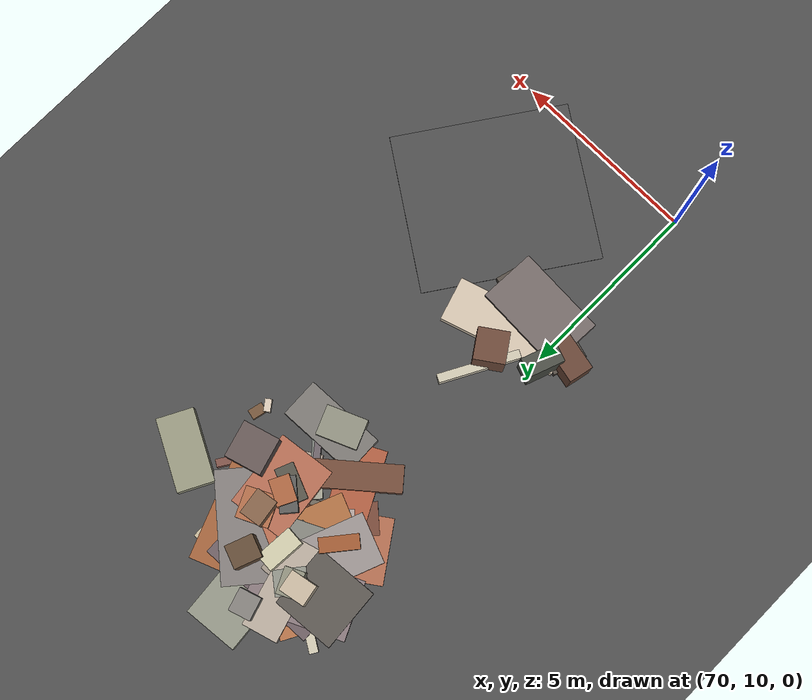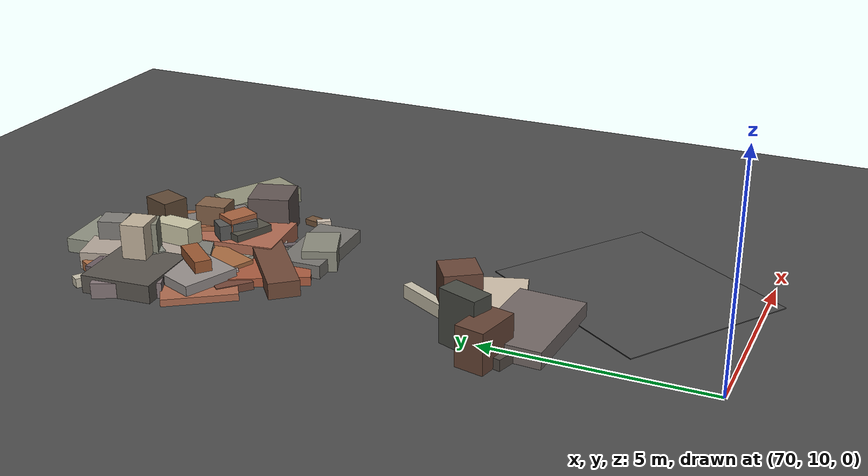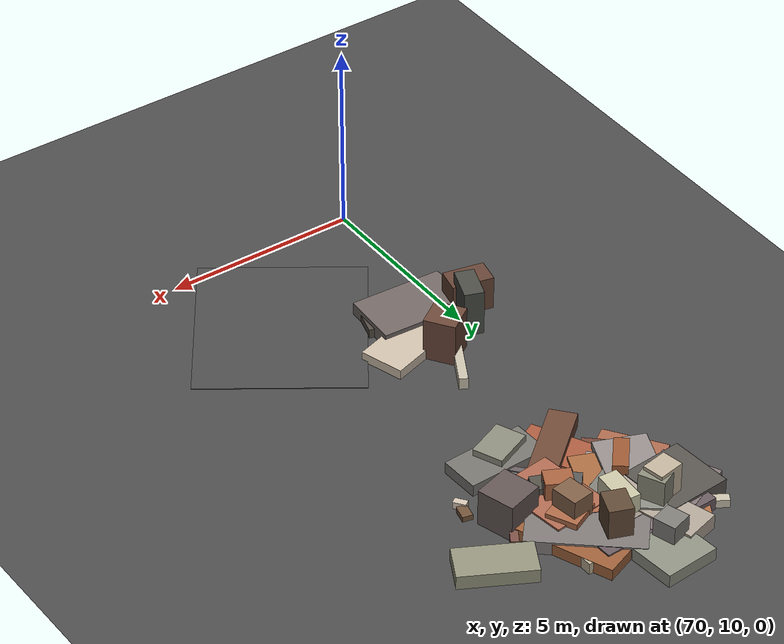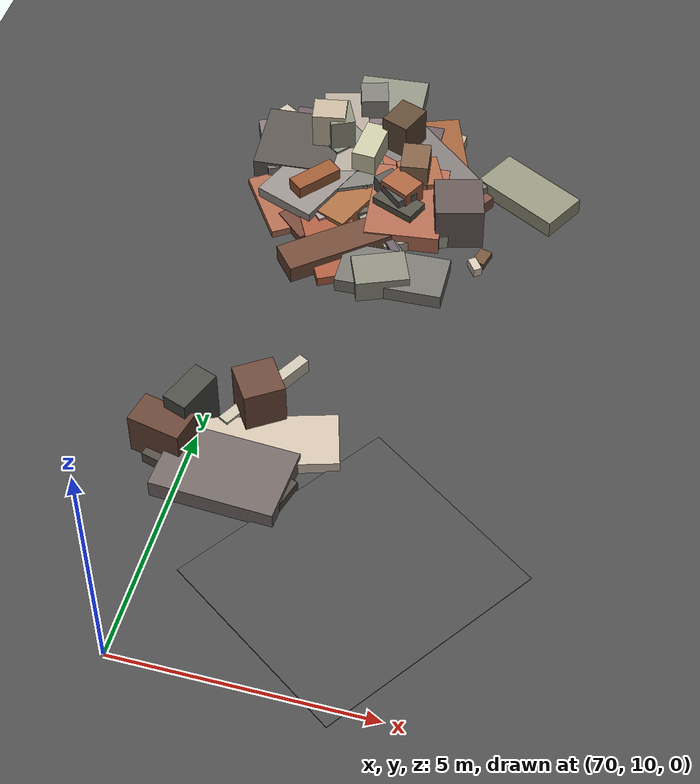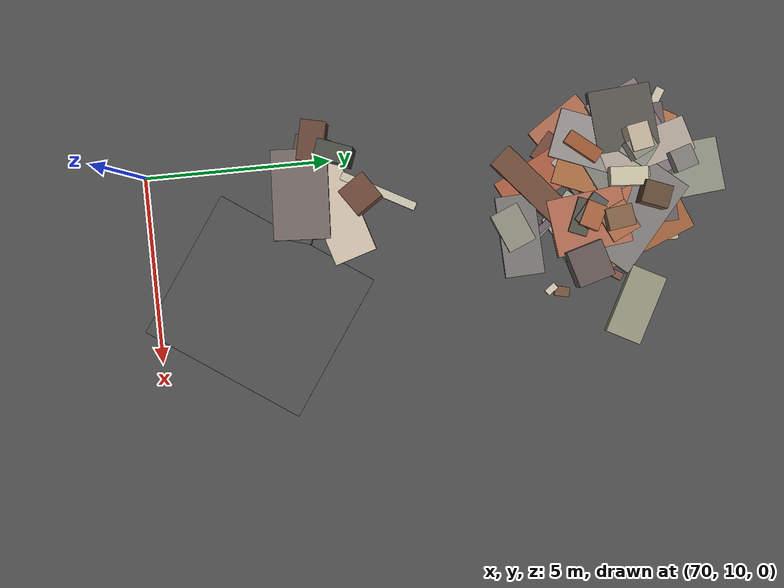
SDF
<sdf version="1.6">
 <world name="navitas_arena">
  <model name="ground_plane">
   <static>true</static>
   <link name="link">
    <collision name="collision">
     <geometry><plane><normal>0 0 1</normal><size>400 400</size></plane></geometry>
     <surface><friction><ode><mu>0.800</mu><mu2>0.800</mu2></ode></friction></surface>
    </collision>
    <visual name="visual">
     <cast_shadows>false</cast_shadows>
     <geometry><plane><normal>0 0 1</normal><size>400 400</size></plane></geometry>
     <material>
      <specular>0.04 0.04 0.04 1</specular>
      <script>
       <uri>file://media/materials/scripts/navitas_asphalt.material</uri>
       <name>Navitas/RealArenaAsphalt</name>
      </script>
     </material>
    </visual>
   </link>
  </model>
  <model name="road_zor_1_17">
   <static>true</static>
   <pose>73.715 12.753 0.040 0 0 0.971</pose>
   <link name="link">
    <collision name="col"><geometry><box><size>4.708 4.200 0.020</size></box></geometry></collision>
    <visual name="vis">
     <geometry><box><size>4.708 4.200 0.020</size></box></geometry>
     <material>
      <specular>0.04 0.04 0.04 1</specular>
      <script>
       <uri>file://media/materials/scripts/navitas_asphalt.material</uri>
       <name>Navitas/RealArenaAsphalt</name>
      </script>
     </material>
    </visual>
   </link>
  </model>
  <model name="deb_zor_42">
   <static>true</static>
   <pose>74.243 21.717 0.000 0 0 0</pose>
   <link name="link">
    <collision name="col_0">
     <pose>0.392 1.080 0.183 0.000 0.000 2.658</pose>
     <geometry><box><size>1.907 0.968 0.366</size></box></geometry>
    </collision>
    <visual name="vis_0">
     <pose>0.392 1.080 0.183 0.000 0.000 2.658</pose>
     <geometry><box><size>1.907 0.968 0.366</size></box></geometry>
     <material>
      <ambient>0.54 0.53 0.46 1</ambient>
      <diffuse>0.58 0.58 0.49 1</diffuse>
      <specular>0.05 0.05 0.045 1</specular>
     </material>
    </visual>
    <collision name="col_1">
     <pose>-0.143 -0.838 0.072 0.000 0.000 1.342</pose>
     <geometry><box><size>0.388 0.261 0.143</size></box></geometry>
    </collision>
    <visual name="vis_1">
     <pose>-0.143 -0.838 0.072 0.000 0.000 1.342</pose>
     <geometry><box><size>0.388 0.261 0.143</size></box></geometry>
     <material>
      <ambient>0.42 0.30 0.21 1</ambient>
      <diffuse>0.45 0.33 0.23 1</diffuse>
      <specular>0.05 0.05 0.045 1</specular>
     </material>
    </visual>
    <collision name="col_2">
     <pose>-0.508 0.563 0.139 0.000 0.000 1.005</pose>
     <geometry><box><size>0.519 0.198 0.278</size></box></geometry>
    </collision>
    <visual name="vis_2">
     <pose>-0.508 0.563 0.139 0.000 0.000 1.005</pose>
     <geometry><box><size>0.519 0.198 0.278</size></box></geometry>
     <material>
      <ambient>0.46 0.30 0.25 1</ambient>
      <diffuse>0.49 0.32 0.28 1</diffuse>
      <specular>0.05 0.05 0.045 1</specular>
     </material>
    </visual>
    <collision name="col_3">
     <pose>-0.230 -1.119 0.094 0.000 0.000 2.212</pose>
     <geometry><box><size>0.327 0.174 0.189</size></box></geometry>
    </collision>
    <visual name="vis_3">
     <pose>-0.230 -1.119 0.094 0.000 0.000 2.212</pose>
     <geometry><box><size>0.327 0.174 0.189</size></box></geometry>
     <material>
      <ambient>0.77 0.71 0.65 1</ambient>
      <diffuse>0.83 0.77 0.70 1</diffuse>
      <specular>0.05 0.05 0.045 1</specular>
     </material>
    </visual>
   </link>
  </model>
  <model name="deb_zor_55">
   <static>true</static>
   <pose>72.549 22.589 0.000 0 0 0</pose>
   <link name="link">
    <collision name="col_0">
     <pose>-0.014 0.448 0.152 0.000 0.000 1.949</pose>
     <geometry><box><size>2.685 1.407 0.305</size></box></geometry>
    </collision>
    <visual name="vis_0">
     <pose>-0.014 0.448 0.152 0.000 0.000 1.949</pose>
     <geometry><box><size>2.685 1.407 0.305</size></box></geometry>
     <material>
      <ambient>0.57 0.35 0.21 1</ambient>
      <diffuse>0.62 0.38 0.23 1</diffuse>
      <specular>0.05 0.05 0.045 1</specular>
     </material>
    </visual>
    <collision name="col_1">
     <pose>0.117 0.368 0.120 0.000 0.000 3.151</pose>
     <geometry><box><size>0.369 0.276 0.241</size></box></geometry>
    </collision>
    <visual name="vis_1">
     <pose>0.117 0.368 0.120 0.000 0.000 3.151</pose>
     <geometry><box><size>0.369 0.276 0.241</size></box></geometry>
     <material>
      <ambient>0.31 0.30 0.28 1</ambient>
      <diffuse>0.33 0.32 0.30 1</diffuse>
      <specular>0.05 0.05 0.045 1</specular>
     </material>
    </visual>
    <collision name="col_2">
     <pose>-0.425 0.297 0.178 0.000 0.000 2.435</pose>
     <geometry><box><size>2.831 1.796 0.356</size></box></geometry>
    </collision>
    <visual name="vis_2">
     <pose>-0.425 0.297 0.178 0.000 0.000 2.435</pose>
     <geometry><box><size>2.831 1.796 0.356</size></box></geometry>
     <material>
      <ambient>0.47 0.45 0.44 1</ambient>
      <diffuse>0.50 0.48 0.47 1</diffuse>
      <specular>0.05 0.05 0.045 1</specular>
     </material>
    </visual>
    <collision name="col_3">
     <pose>0.437 -0.277 0.123 0.000 0.000 3.464</pose>
     <geometry><box><size>0.401 0.219 0.245</size></box></geometry>
    </collision>
    <visual name="vis_3">
     <pose>0.437 -0.277 0.123 0.000 0.000 3.464</pose>
     <geometry><box><size>0.401 0.219 0.245</size></box></geometry>
     <material>
      <ambient>0.37 0.32 0.30 1</ambient>
      <diffuse>0.40 0.35 0.33 1</diffuse>
      <specular>0.05 0.05 0.045 1</specular>
     </material>
    </visual>
   </link>
  </model>
  <model name="deb_zor_68">
   <static>true</static>
   <pose>70.370 15.007 0.000 0 0 0</pose>
   <link name="link">
    <collision name="col_0">
     <pose>0.501 -0.228 0.121 0.000 0.000 0.273</pose>
     <geometry><box><size>1.749 1.144 0.243</size></box></geometry>
    </collision>
    <visual name="vis_0">
     <pose>0.501 -0.228 0.121 0.000 0.000 0.273</pose>
     <geometry><box><size>1.749 1.144 0.243</size></box></geometry>
     <material>
      <ambient>0.48 0.46 0.42 1</ambient>
      <diffuse>0.51 0.49 0.45 1</diffuse>
      <specular>0.05 0.05 0.045 1</specular>
     </material>
    </visual>
    <collision name="col_1">
     <pose>-0.871 -0.390 0.456 0.000 0.000 -0.212</pose>
     <geometry><box><size>1.079 0.659 0.913</size></box></geometry>
    </collision>
    <visual name="vis_1">
     <pose>-0.871 -0.390 0.456 0.000 0.000 -0.212</pose>
     <geometry><box><size>1.079 0.659 0.913</size></box></geometry>
     <material>
      <ambient>0.37 0.25 0.19 1</ambient>
      <diffuse>0.40 0.27 0.21 1</diffuse>
      <specular>0.05 0.05 0.045 1</specular>
     </material>
    </visual>
    <collision name="col_2">
     <pose>0.336 -0.765 0.125 0.000 0.000 -0.276</pose>
     <geometry><box><size>2.839 0.938 0.249</size></box></geometry>
    </collision>
    <visual name="vis_2">
     <pose>0.336 -0.765 0.125 0.000 0.000 -0.276</pose>
     <geometry><box><size>2.839 0.938 0.249</size></box></geometry>
     <material>
      <ambient>0.31 0.27 0.25 1</ambient>
      <diffuse>0.33 0.30 0.27 1</diffuse>
      <specular>0.05 0.05 0.045 1</specular>
     </material>
    </visual>
    <collision name="col_3">
     <pose>0.471 -0.848 0.189 0.000 0.000 -0.052</pose>
     <geometry><box><size>2.425 1.511 0.377</size></box></geometry>
    </collision>
    <visual name="vis_3">
     <pose>0.471 -0.848 0.189 0.000 0.000 -0.052</pose>
     <geometry><box><size>2.425 1.511 0.377</size></box></geometry>
     <material>
      <ambient>0.41 0.38 0.37 1</ambient>
      <diffuse>0.45 0.41 0.40 1</diffuse>
      <specular>0.05 0.05 0.045 1</specular>
     </material>
    </visual>
    <collision name="col_4">
     <pose>0.807 0.008 0.130 0.000 0.000 0.301</pose>
     <geometry><box><size>3.093 1.168 0.260</size></box></geometry>
    </collision>
    <visual name="vis_4">
     <pose>0.807 0.008 0.130 0.000 0.000 0.301</pose>
     <geometry><box><size>3.093 1.168 0.260</size></box></geometry>
     <material>
      <ambient>0.75 0.69 0.62 1</ambient>
      <diffuse>0.81 0.75 0.67 1</diffuse>
      <specular>0.05 0.05 0.045 1</specular>
     </material>
    </visual>
   </link>
  </model>
  <model name="deb_zor_93">
   <static>true</static>
   <pose>72.999 21.070 0.000 0 0 0</pose>
   <link name="link">
    <collision name="col_0">
     <pose>-0.428 -0.213 0.114 0.000 0.000 0.547</pose>
     <geometry><box><size>1.091 0.145 0.229</size></box></geometry>
    </collision>
    <visual name="vis_0">
     <pose>-0.428 -0.213 0.114 0.000 0.000 0.547</pose>
     <geometry><box><size>1.091 0.145 0.229</size></box></geometry>
     <material>
      <ambient>0.62 0.56 0.52 1</ambient>
      <diffuse>0.67 0.61 0.56 1</diffuse>
      <specular>0.05 0.05 0.045 1</specular>
     </material>
    </visual>
    <collision name="col_1">
     <pose>0.412 0.536 0.489 0.000 0.000 0.283</pose>
     <geometry><box><size>0.981 0.979 0.979</size></box></geometry>
    </collision>
    <visual name="vis_1">
     <pose>0.412 0.536 0.489 0.000 0.000 0.283</pose>
     <geometry><box><size>0.981 0.979 0.979</size></box></geometry>
     <material>
      <ambient>0.36 0.31 0.31 1</ambient>
      <diffuse>0.39 0.34 0.33 1</diffuse>
      <specular>0.05 0.05 0.045 1</specular>
     </material>
    </visual>
    <collision name="col_2">
     <pose>-0.297 -0.898 0.119 0.000 0.000 -0.819</pose>
     <geometry><box><size>1.448 0.224 0.238</size></box></geometry>
    </collision>
    <visual name="vis_2">
     <pose>-0.297 -0.898 0.119 0.000 0.000 -0.819</pose>
     <geometry><box><size>1.448 0.224 0.238</size></box></geometry>
     <material>
      <ambient>0.43 0.43 0.42 1</ambient>
      <diffuse>0.46 0.47 0.45 1</diffuse>
      <specular>0.05 0.05 0.045 1</specular>
     </material>
    </visual>
    <collision name="col_3">
     <pose>-0.604 0.685 0.081 0.000 0.000 1.288</pose>
     <geometry><box><size>0.420 0.316 0.161</size></box></geometry>
    </collision>
    <visual name="vis_3">
     <pose>-0.604 0.685 0.081 0.000 0.000 1.288</pose>
     <geometry><box><size>0.420 0.316 0.161</size></box></geometry>
     <material>
      <ambient>0.51 0.52 0.47 1</ambient>
      <diffuse>0.55 0.56 0.51 1</diffuse>
      <specular>0.05 0.05 0.045 1</specular>
     </material>
    </visual>
   </link>
  </model>
  <model name="deb_zor_104">
   <static>true</static>
   <pose>70.414 15.709 0.000 0 0 0</pose>
   <link name="link">
    <collision name="col_0">
     <pose>0.600 0.075 0.574 0.000 0.000 -0.972</pose>
     <geometry><box><size>0.821 0.807 1.148</size></box></geometry>
    </collision>
    <visual name="vis_0">
     <pose>0.600 0.075 0.574 0.000 0.000 -0.972</pose>
     <geometry><box><size>0.821 0.807 1.148</size></box></geometry>
     <material>
      <ambient>0.39 0.26 0.21 1</ambient>
      <diffuse>0.42 0.28 0.22 1</diffuse>
      <specular>0.05 0.05 0.045 1</specular>
     </material>
    </visual>
    <collision name="col_1">
     <pose>-0.533 -0.520 0.616 0.000 0.000 1.215</pose>
     <geometry><box><size>0.948 0.503 1.233</size></box></geometry>
    </collision>
    <visual name="vis_1">
     <pose>-0.533 -0.520 0.616 0.000 0.000 1.215</pose>
     <geometry><box><size>0.948 0.503 1.233</size></box></geometry>
     <material>
      <ambient>0.27 0.28 0.25 1</ambient>
      <diffuse>0.29 0.30 0.27 1</diffuse>
      <specular>0.05 0.05 0.045 1</specular>
     </material>
    </visual>
    <collision name="col_2">
     <pose>0.780 0.123 0.160 0.000 0.000 -0.574</pose>
     <geometry><box><size>0.294 0.209 0.320</size></box></geometry>
    </collision>
    <visual name="vis_2">
     <pose>0.780 0.123 0.160 0.000 0.000 -0.574</pose>
     <geometry><box><size>0.294 0.209 0.320</size></box></geometry>
     <material>
      <ambient>0.30 0.33 0.31 1</ambient>
      <diffuse>0.33 0.36 0.33 1</diffuse>
      <specular>0.05 0.05 0.045 1</specular>
     </material>
    </visual>
    <collision name="col_3">
     <pose>0.537 0.525 0.157 0.000 0.000 1.074</pose>
     <geometry><box><size>2.151 0.225 0.313</size></box></geometry>
    </collision>
    <visual name="vis_3">
     <pose>0.537 0.525 0.157 0.000 0.000 1.074</pose>
     <geometry><box><size>2.151 0.225 0.313</size></box></geometry>
     <material>
      <ambient>0.73 0.70 0.63 1</ambient>
      <diffuse>0.79 0.76 0.68 1</diffuse>
      <specular>0.05 0.05 0.045 1</specular>
     </material>
    </visual>
    <collision name="col_4">
     <pose>0.534 -0.505 0.115 0.000 0.000 0.233</pose>
     <geometry><box><size>0.439 0.300 0.230</size></box></geometry>
    </collision>
    <visual name="vis_4">
     <pose>0.534 -0.505 0.115 0.000 0.000 0.233</pose>
     <geometry><box><size>0.439 0.300 0.230</size></box></geometry>
     <material>
      <ambient>0.29 0.26 0.23 1</ambient>
      <diffuse>0.32 0.28 0.25 1</diffuse>
      <specular>0.05 0.05 0.045 1</specular>
     </material>
    </visual>
   </link>
  </model>
  <model name="deb_zor_105">
   <static>true</static>
   <pose>72.313 22.029 0.000 0 0 0</pose>
   <link name="link">
    <collision name="col_0">
     <pose>-0.286 -0.234 0.377 0.000 0.000 0.861</pose>
     <geometry><box><size>0.457 0.896 0.754</size></box></geometry>
    </collision>
    <visual name="vis_0">
     <pose>-0.286 -0.234 0.377 0.000 0.000 0.861</pose>
     <geometry><box><size>0.457 0.896 0.754</size></box></geometry>
     <material>
      <ambient>0.32 0.33 0.32 1</ambient>
      <diffuse>0.35 0.35 0.34 1</diffuse>
      <specular>0.05 0.05 0.045 1</specular>
     </material>
    </visual>
    <collision name="col_1">
     <pose>-0.148 -0.469 0.287 0.000 0.000 -0.388</pose>
     <geometry><box><size>0.959 0.496 0.574</size></box></geometry>
    </collision>
    <visual name="vis_1">
     <pose>-0.148 -0.469 0.287 0.000 0.000 -0.388</pose>
     <geometry><box><size>0.959 0.496 0.574</size></box></geometry>
     <material>
      <ambient>0.31 0.30 0.26 1</ambient>
      <diffuse>0.33 0.32 0.28 1</diffuse>
      <specular>0.05 0.05 0.045 1</specular>
     </material>
    </visual>
    <collision name="col_2">
     <pose>0.051 0.497 0.261 0.000 0.000 0.444</pose>
     <geometry><box><size>0.853 0.813 0.522</size></box></geometry>
    </collision>
    <visual name="vis_2">
     <pose>0.051 0.497 0.261 0.000 0.000 0.444</pose>
     <geometry><box><size>0.853 0.813 0.522</size></box></geometry>
     <material>
      <ambient>0.63 0.38 0.26 1</ambient>
      <diffuse>0.68 0.42 0.28 1</diffuse>
      <specular>0.05 0.05 0.045 1</specular>
     </material>
    </visual>
    <collision name="col_3">
     <pose>-0.038 0.467 0.498 0.000 0.000 1.719</pose>
     <geometry><box><size>0.712 0.576 0.997</size></box></geometry>
    </collision>
    <visual name="vis_3">
     <pose>-0.038 0.467 0.498 0.000 0.000 1.719</pose>
     <geometry><box><size>0.712 0.576 0.997</size></box></geometry>
     <material>
      <ambient>0.48 0.35 0.26 1</ambient>
      <diffuse>0.51 0.38 0.28 1</diffuse>
      <specular>0.05 0.05 0.045 1</specular>
     </material>
    </visual>
    <collision name="col_4">
     <pose>-0.016 -0.268 0.202 0.000 0.000 1.698</pose>
     <geometry><box><size>2.025 1.538 0.404</size></box></geometry>
    </collision>
    <visual name="vis_4">
     <pose>-0.016 -0.268 0.202 0.000 0.000 1.698</pose>
     <geometry><box><size>2.025 1.538 0.404</size></box></geometry>
     <material>
      <ambient>0.64 0.39 0.30 1</ambient>
      <diffuse>0.69 0.42 0.32 1</diffuse>
      <specular>0.05 0.05 0.045 1</specular>
     </material>
    </visual>
    <collision name="col_5">
     <pose>0.340 0.282 0.160 0.000 0.000 2.025</pose>
     <geometry><box><size>2.821 0.880 0.319</size></box></geometry>
    </collision>
    <visual name="vis_5">
     <pose>0.340 0.282 0.160 0.000 0.000 2.025</pose>
     <geometry><box><size>2.821 0.880 0.319</size></box></geometry>
     <material>
      <ambient>0.57 0.57 0.51 1</ambient>
      <diffuse>0.61 0.62 0.55 1</diffuse>
      <specular>0.05 0.05 0.045 1</specular>
     </material>
    </visual>
   </link>
  </model>
  <model name="deb_zor_177">
   <static>true</static>
   <pose>71.505 23.707 0.000 0 0 0</pose>
   <link name="link">
    <collision name="col_0">
     <pose>-0.436 -1.014 0.157 0.000 0.000 1.092</pose>
     <geometry><box><size>1.224 0.133 0.314</size></box></geometry>
    </collision>
    <visual name="vis_0">
     <pose>-0.436 -1.014 0.157 0.000 0.000 1.092</pose>
     <geometry><box><size>1.224 0.133 0.314</size></box></geometry>
     <material>
      <ambient>0.67 0.43 0.29 1</ambient>
      <diffuse>0.72 0.46 0.31 1</diffuse>
      <specular>0.05 0.05 0.045 1</specular>
     </material>
    </visual>
    <collision name="col_1">
     <pose>-0.314 0.528 0.171 0.000 0.000 1.664</pose>
     <geometry><box><size>2.322 1.434 0.342</size></box></geometry>
    </collision>
    <visual name="vis_1">
     <pose>-0.314 0.528 0.171 0.000 0.000 1.664</pose>
     <geometry><box><size>2.322 1.434 0.342</size></box></geometry>
     <material>
      <ambient>0.52 0.53 0.47 1</ambient>
      <diffuse>0.56 0.57 0.51 1</diffuse>
      <specular>0.05 0.05 0.045 1</specular>
     </material>
    </visual>
    <collision name="col_2">
     <pose>-0.956 -0.546 0.149 0.000 0.000 1.238</pose>
     <geometry><box><size>1.375 0.297 0.299</size></box></geometry>
    </collision>
    <visual name="vis_2">
     <pose>-0.956 -0.546 0.149 0.000 0.000 1.238</pose>
     <geometry><box><size>1.375 0.297 0.299</size></box></geometry>
     <material>
      <ambient>0.40 0.27 0.17 1</ambient>
      <diffuse>0.44 0.30 0.19 1</diffuse>
      <specular>0.05 0.05 0.045 1</specular>
     </material>
    </visual>
    <collision name="col_3">
     <pose>-0.852 -0.113 0.107 0.000 0.000 1.828</pose>
     <geometry><box><size>0.235 0.343 0.213</size></box></geometry>
    </collision>
    <visual name="vis_3">
     <pose>-0.852 -0.113 0.107 0.000 0.000 1.828</pose>
     <geometry><box><size>0.235 0.343 0.213</size></box></geometry>
     <material>
      <ambient>0.55 0.54 0.47 1</ambient>
      <diffuse>0.60 0.58 0.50 1</diffuse>
      <specular>0.05 0.05 0.045 1</specular>
     </material>
    </visual>
    <collision name="col_4">
     <pose>-0.614 0.624 0.415 0.000 0.000 0.305</pose>
     <geometry><box><size>0.579 0.596 0.830</size></box></geometry>
    </collision>
    <visual name="vis_4">
     <pose>-0.614 0.624 0.415 0.000 0.000 0.305</pose>
     <geometry><box><size>0.579 0.596 0.830</size></box></geometry>
     <material>
      <ambient>0.47 0.46 0.44 1</ambient>
      <diffuse>0.50 0.49 0.47 1</diffuse>
      <specular>0.05 0.05 0.045 1</specular>
     </material>
    </visual>
   </link>
  </model>
  <model name="deb_zor_188">
   <static>true</static>
   <pose>71.303 21.404 0.000 0 0 0</pose>
   <link name="link">
    <collision name="col_0">
     <pose>-0.393 0.352 0.128 0.000 0.000 0.758</pose>
     <geometry><box><size>1.547 0.898 0.255</size></box></geometry>
    </collision>
    <visual name="vis_0">
     <pose>-0.393 0.352 0.128 0.000 0.000 0.758</pose>
     <geometry><box><size>1.547 0.898 0.255</size></box></geometry>
     <material>
      <ambient>0.63 0.57 0.56 1</ambient>
      <diffuse>0.68 0.62 0.60 1</diffuse>
      <specular>0.05 0.05 0.045 1</specular>
     </material>
    </visual>
    <collision name="col_1">
     <pose>0.395 -0.022 0.078 0.000 0.000 1.960</pose>
     <geometry><box><size>0.203 0.203 0.157</size></box></geometry>
    </collision>
    <visual name="vis_1">
     <pose>0.395 -0.022 0.078 0.000 0.000 1.960</pose>
     <geometry><box><size>0.203 0.203 0.157</size></box></geometry>
     <material>
      <ambient>0.51 0.47 0.47 1</ambient>
      <diffuse>0.55 0.51 0.51 1</diffuse>
      <specular>0.05 0.05 0.045 1</specular>
     </material>
    </visual>
    <collision name="col_2">
     <pose>0.357 -0.077 0.086 0.000 0.000 0.824</pose>
     <geometry><box><size>0.434 0.304 0.171</size></box></geometry>
    </collision>
    <visual name="vis_2">
     <pose>0.357 -0.077 0.086 0.000 0.000 0.824</pose>
     <geometry><box><size>0.434 0.304 0.171</size></box></geometry>
     <material>
      <ambient>0.58 0.57 0.52 1</ambient>
      <diffuse>0.63 0.62 0.56 1</diffuse>
      <specular>0.05 0.05 0.045 1</specular>
     </material>
    </visual>
    <collision name="col_3">
     <pose>0.570 0.076 0.149 0.000 0.000 0.791</pose>
     <geometry><box><size>0.246 0.347 0.298</size></box></geometry>
    </collision>
    <visual name="vis_3">
     <pose>0.570 0.076 0.149 0.000 0.000 0.791</pose>
     <geometry><box><size>0.246 0.347 0.298</size></box></geometry>
     <material>
      <ambient>0.57 0.31 0.20 1</ambient>
      <diffuse>0.62 0.33 0.21 1</diffuse>
      <specular>0.05 0.05 0.045 1</specular>
     </material>
    </visual>
   </link>
  </model>
  <model name="deb_zor_222">
   <static>true</static>
   <pose>70.737 22.952 0.000 0 0 0</pose>
   <link name="link">
    <collision name="col_0">
     <pose>0.775 0.152 0.131 0.000 0.000 0.735</pose>
     <geometry><box><size>2.069 1.268 0.263</size></box></geometry>
    </collision>
    <visual name="vis_0">
     <pose>0.775 0.152 0.131 0.000 0.000 0.735</pose>
     <geometry><box><size>2.069 1.268 0.263</size></box></geometry>
     <material>
      <ambient>0.55 0.33 0.20 1</ambient>
      <diffuse>0.59 0.36 0.21 1</diffuse>
      <specular>0.05 0.05 0.045 1</specular>
     </material>
    </visual>
    <collision name="col_1">
     <pose>-0.796 0.450 0.109 0.000 0.000 2.590</pose>
     <geometry><box><size>2.378 0.228 0.217</size></box></geometry>
    </collision>
    <visual name="vis_1">
     <pose>-0.796 0.450 0.109 0.000 0.000 2.590</pose>
     <geometry><box><size>2.378 0.228 0.217</size></box></geometry>
     <material>
      <ambient>0.73 0.70 0.63 1</ambient>
      <diffuse>0.79 0.76 0.68 1</diffuse>
      <specular>0.05 0.05 0.045 1</specular>
     </material>
    </visual>
    <collision name="col_2">
     <pose>-0.496 0.215 0.609 0.000 0.000 1.754</pose>
     <geometry><box><size>0.560 0.692 1.217</size></box></geometry>
    </collision>
    <visual name="vis_2">
     <pose>-0.496 0.215 0.609 0.000 0.000 1.754</pose>
     <geometry><box><size>0.560 0.692 1.217</size></box></geometry>
     <material>
      <ambient>0.71 0.65 0.57 1</ambient>
      <diffuse>0.76 0.70 0.61 1</diffuse>
      <specular>0.05 0.05 0.045 1</specular>
     </material>
    </visual>
    <collision name="col_3">
     <pose>0.064 -0.224 0.076 0.000 0.000 0.814</pose>
     <geometry><box><size>1.308 0.134 0.151</size></box></geometry>
    </collision>
    <visual name="vis_3">
     <pose>0.064 -0.224 0.076 0.000 0.000 0.814</pose>
     <geometry><box><size>1.308 0.134 0.151</size></box></geometry>
     <material>
      <ambient>0.60 0.59 0.51 1</ambient>
      <diffuse>0.64 0.63 0.56 1</diffuse>
      <specular>0.05 0.05 0.045 1</specular>
     </material>
    </visual>
    <collision name="col_4">
     <pose>-0.180 0.241 0.171 0.000 0.000 0.203</pose>
     <geometry><box><size>2.340 1.423 0.342</size></box></geometry>
    </collision>
    <visual name="vis_4">
     <pose>-0.180 0.241 0.171 0.000 0.000 0.203</pose>
     <geometry><box><size>2.340 1.423 0.342</size></box></geometry>
     <material>
      <ambient>0.59 0.31 0.21 1</ambient>
      <diffuse>0.64 0.33 0.23 1</diffuse>
      <specular>0.05 0.05 0.045 1</specular>
     </material>
    </visual>
   </link>
  </model>
  <model name="deb_zor_229">
   <static>true</static>
   <pose>71.561 23.238 0.000 0 0 0</pose>
   <link name="link">
    <collision name="col_0">
     <pose>-0.720 -0.236 0.177 0.000 0.000 0.537</pose>
     <geometry><box><size>1.112 0.301 0.353</size></box></geometry>
    </collision>
    <visual name="vis_0">
     <pose>-0.720 -0.236 0.177 0.000 0.000 0.537</pose>
     <geometry><box><size>1.112 0.301 0.353</size></box></geometry>
     <material>
      <ambient>0.52 0.51 0.48 1</ambient>
      <diffuse>0.56 0.55 0.52 1</diffuse>
      <specular>0.05 0.05 0.045 1</specular>
     </material>
    </visual>
    <collision name="col_1">
     <pose>0.315 0.780 0.116 0.000 0.000 -0.645</pose>
     <geometry><box><size>0.201 0.237 0.232</size></box></geometry>
    </collision>
    <visual name="vis_1">
     <pose>0.315 0.780 0.116 0.000 0.000 -0.645</pose>
     <geometry><box><size>0.201 0.237 0.232</size></box></geometry>
     <material>
      <ambient>0.41 0.36 0.34 1</ambient>
      <diffuse>0.44 0.39 0.36 1</diffuse>
      <specular>0.05 0.05 0.045 1</specular>
     </material>
    </visual>
    <collision name="col_2">
     <pose>0.533 -0.017 0.150 0.000 0.000 0.006</pose>
     <geometry><box><size>1.800 1.723 0.300</size></box></geometry>
    </collision>
    <visual name="vis_2">
     <pose>0.533 -0.017 0.150 0.000 0.000 0.006</pose>
     <geometry><box><size>1.800 1.723 0.300</size></box></geometry>
     <material>
      <ambient>0.70 0.65 0.55 1</ambient>
      <diffuse>0.75 0.70 0.59 1</diffuse>
      <specular>0.05 0.05 0.045 1</specular>
     </material>
    </visual>
    <collision name="col_3">
     <pose>0.160 0.370 0.152 0.000 0.000 1.667</pose>
     <geometry><box><size>1.396 0.177 0.304</size></box></geometry>
    </collision>
    <visual name="vis_3">
     <pose>0.160 0.370 0.152 0.000 0.000 1.667</pose>
     <geometry><box><size>1.396 0.177 0.304</size></box></geometry>
     <material>
      <ambient>0.43 0.43 0.42 1</ambient>
      <diffuse>0.47 0.47 0.45 1</diffuse>
      <specular>0.05 0.05 0.045 1</specular>
     </material>
    </visual>
    <collision name="col_4">
     <pose>0.209 0.238 0.574 0.000 0.000 -0.363</pose>
     <geometry><box><size>0.602 0.724 1.147</size></box></geometry>
    </collision>
    <visual name="vis_4">
     <pose>0.209 0.238 0.574 0.000 0.000 -0.363</pose>
     <geometry><box><size>0.602 0.724 1.147</size></box></geometry>
     <material>
      <ambient>0.36 0.27 0.20 1</ambient>
      <diffuse>0.38 0.29 0.21 1</diffuse>
      <specular>0.05 0.05 0.045 1</specular>
     </material>
    </visual>
    <collision name="col_5">
     <pose>-0.343 -0.389 0.432 0.000 0.000 1.502</pose>
     <geometry><box><size>0.992 0.494 0.864</size></box></geometry>
    </collision>
    <visual name="vis_5">
     <pose>-0.343 -0.389 0.432 0.000 0.000 1.502</pose>
     <geometry><box><size>0.992 0.494 0.864</size></box></geometry>
     <material>
      <ambient>0.74 0.71 0.61 1</ambient>
      <diffuse>0.79 0.77 0.65 1</diffuse>
      <specular>0.05 0.05 0.045 1</specular>
     </material>
    </visual>
    <collision name="col_6">
     <pose>0.106 -0.865 0.071 0.000 0.000 -0.534</pose>
     <geometry><box><size>0.449 0.255 0.142</size></box></geometry>
    </collision>
    <visual name="vis_6">
     <pose>0.106 -0.865 0.071 0.000 0.000 -0.534</pose>
     <geometry><box><size>0.449 0.255 0.142</size></box></geometry>
     <material>
      <ambient>0.44 0.28 0.20 1</ambient>
      <diffuse>0.48 0.30 0.22 1</diffuse>
      <specular>0.05 0.05 0.045 1</specular>
     </material>
    </visual>
   </link>
  </model>
  <model name="deb_zor_258">
   <static>true</static>
   <pose>71.907 20.322 0.000 0 0 0</pose>
   <link name="link">
    <collision name="col_0">
     <pose>0.588 -0.440 0.156 0.000 0.000 0.043</pose>
     <geometry><box><size>2.164 1.051 0.311</size></box></geometry>
    </collision>
    <visual name="vis_0">
     <pose>0.588 -0.440 0.156 0.000 0.000 0.043</pose>
     <geometry><box><size>2.164 1.051 0.311</size></box></geometry>
     <material>
      <ambient>0.44 0.43 0.41 1</ambient>
      <diffuse>0.47 0.46 0.44 1</diffuse>
      <specular>0.05 0.05 0.045 1</specular>
     </material>
    </visual>
    <collision name="col_1">
     <pose>0.355 0.294 0.134 0.000 0.000 2.235</pose>
     <geometry><box><size>1.840 0.172 0.269</size></box></geometry>
    </collision>
    <visual name="vis_1">
     <pose>0.355 0.294 0.134 0.000 0.000 2.235</pose>
     <geometry><box><size>1.840 0.172 0.269</size></box></geometry>
     <material>
      <ambient>0.39 0.36 0.37 1</ambient>
      <diffuse>0.42 0.38 0.40 1</diffuse>
      <specular>0.05 0.05 0.045 1</specular>
     </material>
    </visual>
    <collision name="col_2">
     <pose>-0.468 0.188 0.188 0.000 0.000 0.701</pose>
     <geometry><box><size>2.961 0.703 0.375</size></box></geometry>
    </collision>
    <visual name="vis_2">
     <pose>-0.468 0.188 0.188 0.000 0.000 0.701</pose>
     <geometry><box><size>2.961 0.703 0.375</size></box></geometry>
     <material>
      <ambient>0.40 0.26 0.21 1</ambient>
      <diffuse>0.44 0.29 0.22 1</diffuse>
      <specular>0.05 0.05 0.045 1</specular>
     </material>
    </visual>
    <collision name="col_3">
     <pose>0.371 -0.609 0.244 0.000 0.000 0.402</pose>
     <geometry><box><size>1.083 0.787 0.488</size></box></geometry>
    </collision>
    <visual name="vis_3">
     <pose>0.371 -0.609 0.244 0.000 0.000 0.402</pose>
     <geometry><box><size>1.083 0.787 0.488</size></box></geometry>
     <material>
      <ambient>0.51 0.51 0.45 1</ambient>
      <diffuse>0.55 0.55 0.49 1</diffuse>
      <specular>0.05 0.05 0.045 1</specular>
     </material>
    </visual>
   </link>
  </model>
  <model name="deb_zor_273">
   <static>true</static>
   <pose>71.027 21.764 0.000 0 0 0</pose>
   <link name="link">
    <collision name="col_0">
     <pose>-0.784 0.328 0.197 0.000 0.000 1.197</pose>
     <geometry><box><size>2.190 1.325 0.393</size></box></geometry>
    </collision>
    <visual name="vis_0">
     <pose>-0.784 0.328 0.197 0.000 0.000 1.197</pose>
     <geometry><box><size>2.190 1.325 0.393</size></box></geometry>
     <material>
      <ambient>0.54 0.52 0.51 1</ambient>
      <diffuse>0.59 0.56 0.55 1</diffuse>
      <specular>0.05 0.05 0.045 1</specular>
     </material>
    </visual>
    <collision name="col_1">
     <pose>1.135 0.044 0.435 0.000 0.000 1.104</pose>
     <geometry><box><size>0.522 0.683 0.871</size></box></geometry>
    </collision>
    <visual name="vis_1">
     <pose>1.135 0.044 0.435 0.000 0.000 1.104</pose>
     <geometry><box><size>0.522 0.683 0.871</size></box></geometry>
     <material>
      <ambient>0.61 0.36 0.23 1</ambient>
      <diffuse>0.66 0.39 0.25 1</diffuse>
      <specular>0.05 0.05 0.045 1</specular>
     </material>
    </visual>
    <collision name="col_2">
     <pose>-0.190 0.953 0.114 0.000 0.000 1.268</pose>
     <geometry><box><size>1.591 1.738 0.228</size></box></geometry>
    </collision>
    <visual name="vis_2">
     <pose>-0.190 0.953 0.114 0.000 0.000 1.268</pose>
     <geometry><box><size>1.591 1.738 0.228</size></box></geometry>
     <material>
      <ambient>0.73 0.67 0.62 1</ambient>
      <diffuse>0.78 0.73 0.67 1</diffuse>
      <specular>0.05 0.05 0.045 1</specular>
     </material>
    </visual>
    <collision name="col_3">
     <pose>-0.389 0.199 0.080 0.000 0.000 0.604</pose>
     <geometry><box><size>3.174 1.658 0.161</size></box></geometry>
    </collision>
    <visual name="vis_3">
     <pose>-0.389 0.199 0.080 0.000 0.000 0.604</pose>
     <geometry><box><size>3.174 1.658 0.161</size></box></geometry>
     <material>
      <ambient>0.63 0.39 0.29 1</ambient>
      <diffuse>0.68 0.42 0.31 1</diffuse>
      <specular>0.05 0.05 0.045 1</specular>
     </material>
    </visual>
    <collision name="col_4">
     <pose>-0.103 0.944 0.185 0.000 0.000 1.640</pose>
     <geometry><box><size>1.526 0.793 0.370</size></box></geometry>
    </collision>
    <visual name="vis_4">
     <pose>-0.103 0.944 0.185 0.000 0.000 1.640</pose>
     <geometry><box><size>1.526 0.793 0.370</size></box></geometry>
     <material>
      <ambient>0.56 0.53 0.48 1</ambient>
      <diffuse>0.61 0.57 0.52 1</diffuse>
      <specular>0.05 0.05 0.045 1</specular>
     </material>
    </visual>
    <collision name="col_5">
     <pose>0.715 0.967 0.186 0.000 0.000 2.738</pose>
     <geometry><box><size>1.539 0.260 0.373</size></box></geometry>
    </collision>
    <visual name="vis_5">
     <pose>0.715 0.967 0.186 0.000 0.000 2.738</pose>
     <geometry><box><size>1.539 0.260 0.373</size></box></geometry>
     <material>
      <ambient>0.64 0.39 0.29 1</ambient>
      <diffuse>0.70 0.42 0.31 1</diffuse>
      <specular>0.05 0.05 0.045 1</specular>
     </material>
    </visual>
   </link>
  </model>
  <model name="deb_zor_302">
   <static>true</static>
   <pose>70.882 21.389 0.000 0 0 0</pose>
   <link name="link">
    <collision name="col_0">
     <pose>-0.052 0.831 0.192 0.000 0.000 3.597</pose>
     <geometry><box><size>1.686 0.860 0.384</size></box></geometry>
    </collision>
    <visual name="vis_0">
     <pose>-0.052 0.831 0.192 0.000 0.000 3.597</pose>
     <geometry><box><size>1.686 0.860 0.384</size></box></geometry>
     <material>
      <ambient>0.47 0.46 0.43 1</ambient>
      <diffuse>0.50 0.50 0.47 1</diffuse>
      <specular>0.05 0.05 0.045 1</specular>
     </material>
    </visual>
    <collision name="col_1">
     <pose>0.064 -0.693 0.103 0.000 0.000 2.055</pose>
     <geometry><box><size>2.530 1.044 0.205</size></box></geometry>
    </collision>
    <visual name="vis_1">
     <pose>0.064 -0.693 0.103 0.000 0.000 2.055</pose>
     <geometry><box><size>2.530 1.044 0.205</size></box></geometry>
     <material>
      <ambient>0.62 0.33 0.23 1</ambient>
      <diffuse>0.67 0.36 0.25 1</diffuse>
      <specular>0.05 0.05 0.045 1</specular>
     </material>
    </visual>
    <collision name="col_2">
     <pose>1.001 0.362 0.100 0.000 0.000 3.732</pose>
     <geometry><box><size>1.573 0.133 0.199</size></box></geometry>
    </collision>
    <visual name="vis_2">
     <pose>1.001 0.362 0.100 0.000 0.000 3.732</pose>
     <geometry><box><size>1.573 0.133 0.199</size></box></geometry>
     <material>
      <ambient>0.39 0.36 0.33 1</ambient>
      <diffuse>0.42 0.39 0.35 1</diffuse>
      <specular>0.05 0.05 0.045 1</specular>
     </material>
    </visual>
    <collision name="col_3">
     <pose>-0.045 0.944 0.149 0.000 0.000 4.322</pose>
     <geometry><box><size>2.509 1.742 0.299</size></box></geometry>
    </collision>
    <visual name="vis_3">
     <pose>-0.045 0.944 0.149 0.000 0.000 4.322</pose>
     <geometry><box><size>2.509 1.742 0.299</size></box></geometry>
     <material>
      <ambient>0.62 0.40 0.24 1</ambient>
      <diffuse>0.67 0.43 0.26 1</diffuse>
      <specular>0.05 0.05 0.045 1</specular>
     </material>
    </visual>
   </link>
  </model>
  <model name="deb_zor_333">
   <static>true</static>
   <pose>71.082 23.178 0.000 0 0 0</pose>
   <link name="link">
    <collision name="col_0">
     <pose>-0.159 0.276 0.172 0.000 0.000 3.189</pose>
     <geometry><box><size>3.185 1.219 0.344</size></box></geometry>
    </collision>
    <visual name="vis_0">
     <pose>-0.159 0.276 0.172 0.000 0.000 3.189</pose>
     <geometry><box><size>3.185 1.219 0.344</size></box></geometry>
     <material>
      <ambient>0.39 0.33 0.35 1</ambient>
      <diffuse>0.42 0.36 0.38 1</diffuse>
      <specular>0.05 0.05 0.045 1</specular>
     </material>
    </visual>
    <collision name="col_1">
     <pose>-0.629 0.033 0.561 0.000 0.000 2.021</pose>
     <geometry><box><size>0.683 0.516 1.122</size></box></geometry>
    </collision>
    <visual name="vis_1">
     <pose>-0.629 0.033 0.561 0.000 0.000 2.021</pose>
     <geometry><box><size>0.683 0.516 1.122</size></box></geometry>
     <material>
      <ambient>0.51 0.51 0.45 1</ambient>
      <diffuse>0.55 0.55 0.48 1</diffuse>
      <specular>0.05 0.05 0.045 1</specular>
     </material>
    </visual>
    <collision name="col_2">
     <pose>-0.564 0.043 0.224 0.000 0.000 0.901</pose>
     <geometry><box><size>0.817 0.646 0.449</size></box></geometry>
    </collision>
    <visual name="vis_2">
     <pose>-0.564 0.043 0.224 0.000 0.000 0.901</pose>
     <geometry><box><size>0.817 0.646 0.449</size></box></geometry>
     <material>
      <ambient>0.51 0.52 0.48 1</ambient>
      <diffuse>0.55 0.56 0.52 1</diffuse>
      <specular>0.05 0.05 0.045 1</specular>
     </material>
    </visual>
    <collision name="col_3">
     <pose>-0.501 -0.031 0.114 0.000 0.000 2.637</pose>
     <geometry><box><size>2.749 1.333 0.227</size></box></geometry>
    </collision>
    <visual name="vis_3">
     <pose>-0.501 -0.031 0.114 0.000 0.000 2.637</pose>
     <geometry><box><size>2.749 1.333 0.227</size></box></geometry>
     <material>
      <ambient>0.64 0.41 0.26 1</ambient>
      <diffuse>0.69 0.44 0.28 1</diffuse>
      <specular>0.05 0.05 0.045 1</specular>
     </material>
    </visual>
    <collision name="col_4">
     <pose>-0.088 -0.427 0.095 0.000 0.000 2.991</pose>
     <geometry><box><size>2.526 1.382 0.191</size></box></geometry>
    </collision>
    <visual name="vis_4">
     <pose>-0.088 -0.427 0.095 0.000 0.000 2.991</pose>
     <geometry><box><size>2.526 1.382 0.191</size></box></geometry>
     <material>
      <ambient>0.30 0.32 0.31 1</ambient>
      <diffuse>0.33 0.35 0.33 1</diffuse>
      <specular>0.05 0.05 0.045 1</specular>
     </material>
    </visual>
    <collision name="col_5">
     <pose>-0.558 0.272 0.200 0.000 0.000 1.855</pose>
     <geometry><box><size>2.416 0.942 0.400</size></box></geometry>
    </collision>
    <visual name="vis_5">
     <pose>-0.558 0.272 0.200 0.000 0.000 1.855</pose>
     <geometry><box><size>2.416 0.942 0.400</size></box></geometry>
     <material>
      <ambient>0.65 0.61 0.55 1</ambient>
      <diffuse>0.70 0.65 0.60 1</diffuse>
      <specular>0.05 0.05 0.045 1</specular>
     </material>
    </visual>
   </link>
  </model>
  <model name="deb_zor_392">
   <static>true</static>
   <pose>70.339 22.755 0.000 0 0 0</pose>
   <link name="link">
    <collision name="col_0">
     <pose>0.285 -0.239 0.090 0.000 0.000 2.934</pose>
     <geometry><box><size>0.354 0.353 0.180</size></box></geometry>
    </collision>
    <visual name="vis_0">
     <pose>0.285 -0.239 0.090 0.000 0.000 2.934</pose>
     <geometry><box><size>0.354 0.353 0.180</size></box></geometry>
     <material>
      <ambient>0.33 0.33 0.32 1</ambient>
      <diffuse>0.35 0.35 0.34 1</diffuse>
      <specular>0.05 0.05 0.045 1</specular>
     </material>
    </visual>
    <collision name="col_1">
     <pose>0.127 -0.507 0.072 0.000 0.000 2.931</pose>
     <geometry><box><size>0.184 0.245 0.143</size></box></geometry>
    </collision>
    <visual name="vis_1">
     <pose>0.127 -0.507 0.072 0.000 0.000 2.931</pose>
     <geometry><box><size>0.184 0.245 0.143</size></box></geometry>
     <material>
      <ambient>0.56 0.32 0.20 1</ambient>
      <diffuse>0.61 0.35 0.22 1</diffuse>
      <specular>0.05 0.05 0.045 1</specular>
     </material>
    </visual>
    <collision name="col_2">
     <pose>-0.240 0.437 0.175 0.000 0.000 3.580</pose>
     <geometry><box><size>2.617 1.518 0.351</size></box></geometry>
    </collision>
    <visual name="vis_2">
     <pose>-0.240 0.437 0.175 0.000 0.000 3.580</pose>
     <geometry><box><size>2.617 1.518 0.351</size></box></geometry>
     <material>
      <ambient>0.48 0.43 0.44 1</ambient>
      <diffuse>0.52 0.46 0.47 1</diffuse>
      <specular>0.05 0.05 0.045 1</specular>
     </material>
    </visual>
    <collision name="col_3">
     <pose>-0.023 -1.002 0.331 0.000 0.000 4.028</pose>
     <geometry><box><size>1.005 0.379 0.662</size></box></geometry>
    </collision>
    <visual name="vis_3">
     <pose>-0.023 -1.002 0.331 0.000 0.000 4.028</pose>
     <geometry><box><size>1.005 0.379 0.662</size></box></geometry>
     <material>
      <ambient>0.56 0.32 0.19 1</ambient>
      <diffuse>0.61 0.35 0.20 1</diffuse>
      <specular>0.05 0.05 0.045 1</specular>
     </material>
    </visual>
    <collision name="col_4">
     <pose>-0.682 0.164 0.208 0.000 0.000 1.651</pose>
     <geometry><box><size>1.659 1.672 0.417</size></box></geometry>
    </collision>
    <visual name="vis_4">
     <pose>-0.682 0.164 0.208 0.000 0.000 1.651</pose>
     <geometry><box><size>1.659 1.672 0.417</size></box></geometry>
     <material>
      <ambient>0.32 0.31 0.28 1</ambient>
      <diffuse>0.35 0.33 0.31 1</diffuse>
      <specular>0.05 0.05 0.045 1</specular>
     </material>
    </visual>
    <collision name="col_5">
     <pose>0.604 0.907 0.114 0.000 0.000 2.289</pose>
     <geometry><box><size>2.389 0.173 0.227</size></box></geometry>
    </collision>
    <visual name="vis_5">
     <pose>0.604 0.907 0.114 0.000 0.000 2.289</pose>
     <geometry><box><size>2.389 0.173 0.227</size></box></geometry>
     <material>
      <ambient>0.44 0.33 0.28 1</ambient>
      <diffuse>0.48 0.35 0.30 1</diffuse>
      <specular>0.05 0.05 0.045 1</specular>
     </material>
    </visual>
    <collision name="col_6">
     <pose>0.659 -1.086 0.090 0.000 0.000 3.984</pose>
     <geometry><box><size>2.736 0.831 0.180</size></box></geometry>
    </collision>
    <visual name="vis_6">
     <pose>0.659 -1.086 0.090 0.000 0.000 3.984</pose>
     <geometry><box><size>2.736 0.831 0.180</size></box></geometry>
     <material>
      <ambient>0.43 0.26 0.20 1</ambient>
      <diffuse>0.46 0.28 0.22 1</diffuse>
      <specular>0.05 0.05 0.045 1</specular>
     </material>
    </visual>
   </link>
  </model>
 </world>
</sdf>
